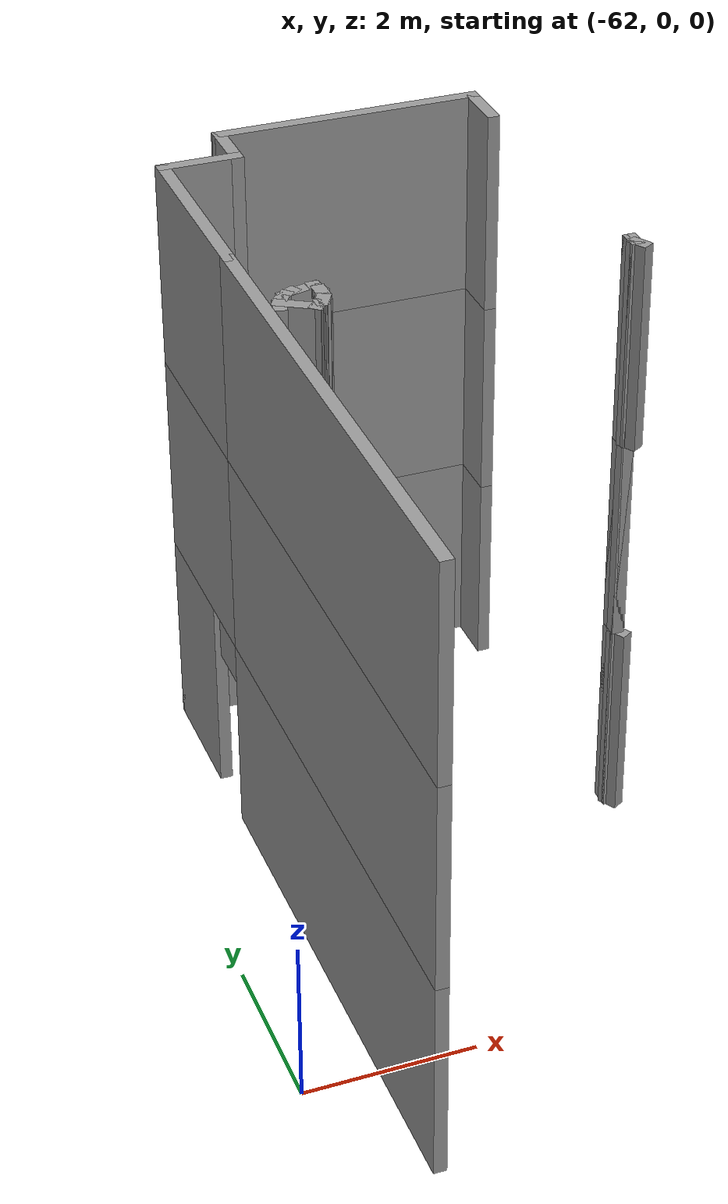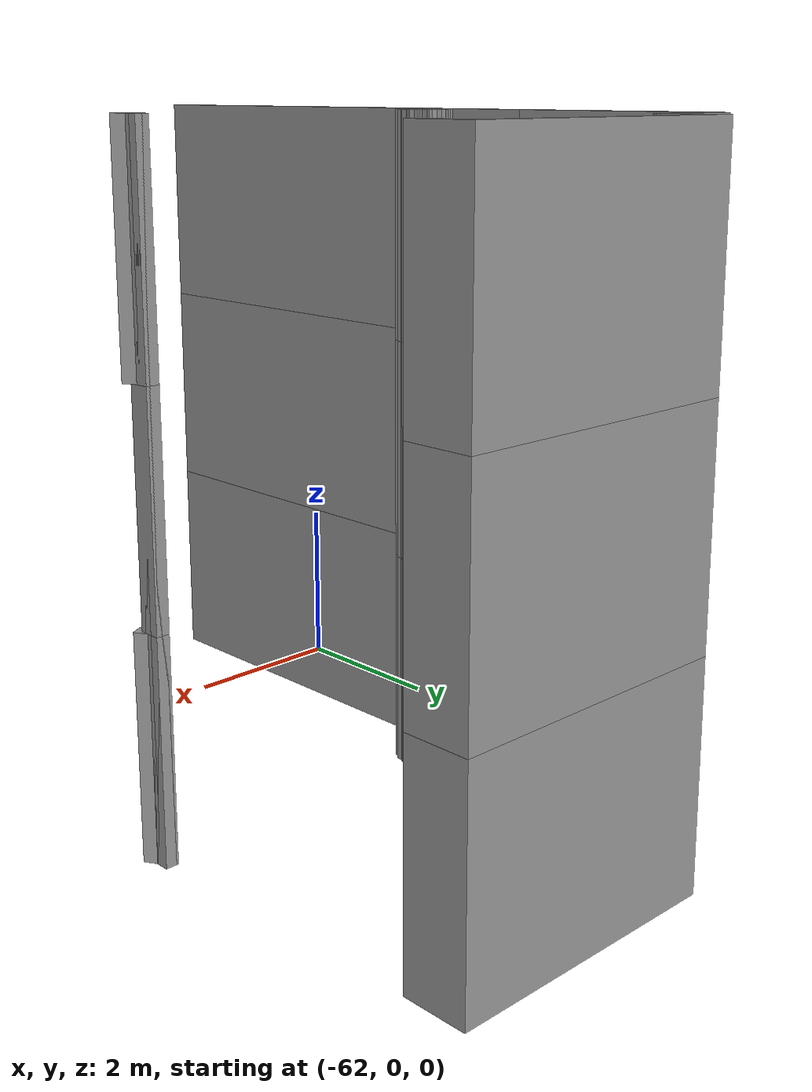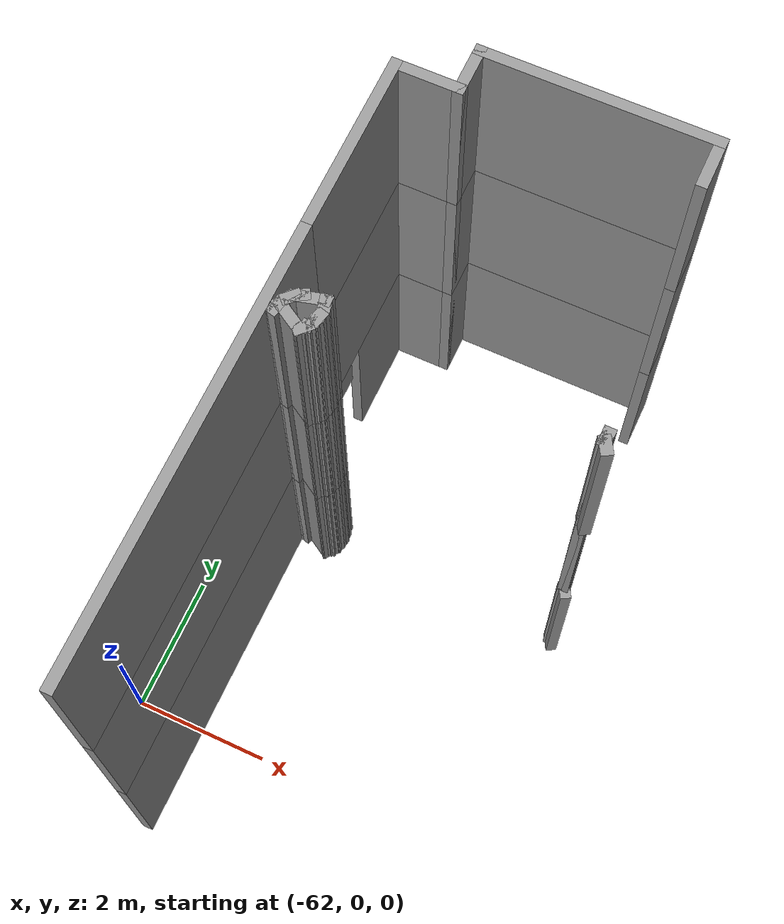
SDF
<sdf version="1.7">
 <model name="mapagazebo">
  <pose>-4.67869 9.01252 0 0 -0 0</pose>
  <link name="Wall_105">
   <collision name="Wall_105_Collision">
    <geometry><box><size>6.25 0.15 2.5</size></box></geometry>
    <pose>0 0 1.25 0 -0 0</pose>
   </collision>
   <visual name="Wall_105_Visual">
    <pose>0 0 1.25 0 -0 0</pose>
    <geometry><box><size>6.25 0.15 2.5</size></box></geometry>
    <material>
     <script><uri>file://media/materials/scripts/gazebo.material</uri><name>Gazebo/Grey</name></script>
     <ambient>1 1 1 1</ambient>
    </material>
    <meta><layer>0</layer></meta>
   </visual>
   <pose>-56.3749 -7.4661 0 0 -0 1.5708</pose>
  </link>
  <link name="Wall_1054">
   <collision name="Wall_1054_Collision">
    <geometry><box><size>0.25 0.15 2.5</size></box></geometry>
    <pose>0 0 1.25 0 -0 0</pose>
   </collision>
   <visual name="Wall_1054_Visual">
    <pose>0 0 1.25 0 -0 0</pose>
    <geometry><box><size>0.25 0.15 2.5</size></box></geometry>
    <material>
     <script><uri>file://media/materials/scripts/gazebo.material</uri><name>Gazebo/Grey</name></script>
     <ambient>1 1 1 1</ambient>
    </material>
    <meta><layer>1</layer></meta>
   </visual>
   <pose>-56.2126 -5.59137 2.5 0 -0 1.309</pose>
  </link>
  <link name="Wall_1055">
   <collision name="Wall_1055_Collision">
    <geometry><box><size>0.25 0.15 2.5</size></box></geometry>
    <pose>0 0 1.25 0 -0 0</pose>
   </collision>
   <visual name="Wall_1055_Visual">
    <pose>0 0 1.25 0 -0 0</pose>
    <geometry><box><size>0.25 0.15 2.5</size></box></geometry>
    <material>
     <script><uri>file://media/materials/scripts/gazebo.material</uri><name>Gazebo/Grey</name></script>
     <ambient>1 1 1 1</ambient>
    </material>
    <meta><layer>1</layer></meta>
   </visual>
   <pose>-56.1747 -5.49977 2.5 0 -0 1.0472</pose>
  </link>
  <link name="Wall_1056">
   <collision name="Wall_1056_Collision">
    <geometry><box><size>0.25 0.15 2.5</size></box></geometry>
    <pose>0 0 1.25 0 -0 0</pose>
   </collision>
   <visual name="Wall_1056_Visual">
    <pose>0 0 1.25 0 -0 0</pose>
    <geometry><box><size>0.25 0.15 2.5</size></box></geometry>
    <material>
     <script><uri>file://media/materials/scripts/gazebo.material</uri><name>Gazebo/Grey</name></script>
     <ambient>1 1 1 1</ambient>
    </material>
    <meta><layer>1</layer></meta>
   </visual>
   <pose>-56.1143 -5.42112 2.5 0 -0 0.785398</pose>
  </link>
  <link name="Wall_1057">
   <collision name="Wall_1057_Collision">
    <geometry><box><size>0.25 0.15 2.5</size></box></geometry>
    <pose>0 0 1.25 0 -0 0</pose>
   </collision>
   <visual name="Wall_1057_Visual">
    <pose>0 0 1.25 0 -0 0</pose>
    <geometry><box><size>0.25 0.15 2.5</size></box></geometry>
    <material>
     <script><uri>file://media/materials/scripts/gazebo.material</uri><name>Gazebo/Grey</name></script>
     <ambient>1 1 1 1</ambient>
    </material>
    <meta><layer>1</layer></meta>
   </visual>
   <pose>-56.0356 -5.36076 2.5 0 -0 0.523599</pose>
  </link>
  <link name="Wall_1058">
   <collision name="Wall_1058_Collision">
    <geometry><box><size>0.5 0.15 2.5</size></box></geometry>
    <pose>0 0 1.25 0 -0 0</pose>
   </collision>
   <visual name="Wall_1058_Visual">
    <pose>0 0 1.25 0 -0 0</pose>
    <geometry><box><size>0.5 0.15 2.5</size></box></geometry>
    <material>
     <script><uri>file://media/materials/scripts/gazebo.material</uri><name>Gazebo/Grey</name></script>
     <ambient>1 1 1 1</ambient>
    </material>
    <meta><layer>1</layer></meta>
   </visual>
   <pose>-55.9099 -5.34047 2.5 0 -0 0.261799</pose>
  </link>
  <link name="Wall_1059">
   <collision name="Wall_1059_Collision">
    <geometry><box><size>0.15 0.15 2.5</size></box></geometry>
    <pose>0 0 1.25 0 -0 0</pose>
   </collision>
   <visual name="Wall_1059_Visual">
    <pose>0 0 1.25 0 -0 0</pose>
    <geometry><box><size>0.15 0.15 2.5</size></box></geometry>
    <material>
     <script><uri>file://media/materials/scripts/gazebo.material</uri><name>Gazebo/Grey</name></script>
     <ambient>1 1 1 1</ambient>
    </material>
    <meta><layer>1</layer></meta>
   </visual>
   <pose>-55.7409 -5.29518 2.5 0 -0 0</pose>
  </link>
  <link name="Wall_106">
   <pose>-56.3749 -3.24111 0 0 -0 1.5708</pose>
   <visual name="Wall_106_Visual_0">
    <pose>-1.21703 0 1.25 0 -0 0</pose>
    <geometry><box><size>0.065941 0.15 2.5</size></box></geometry>
    <material>
     <script><uri>file://media/materials/scripts/gazebo.material</uri><name>Gazebo/Grey</name></script>
     <ambient>1 1 1 1</ambient>
    </material>
    <meta><layer>0</layer></meta>
   </visual>
   <collision name="Wall_106_Collision_0">
    <geometry><box><size>0.065941 0.15 2.5</size></box></geometry>
    <pose>-1.21703 0 1.25 0 -0 0</pose>
   </collision>
   <visual name="Wall_106_Visual_1">
    <pose>0.48297 0 1.25 0 -0 0</pose>
    <geometry><box><size>1.53406 0.15 2.5</size></box></geometry>
    <material>
     <script><uri>file://media/materials/scripts/gazebo.material</uri><name>Gazebo/Grey</name></script>
     <ambient>1 1 1 1</ambient>
    </material>
    <meta><layer>0</layer></meta>
   </visual>
   <collision name="Wall_106_Collision_1">
    <geometry><box><size>1.53406 0.15 2.5</size></box></geometry>
    <pose>0.48297 0 1.25 0 -0 0</pose>
   </collision>
   <visual name="Wall_106_Visual_2">
    <pose>0.816446 0 1.25 0 -0 0</pose>
    <geometry><box><size>0.867109 0.15 2.5</size></box></geometry>
    <material>
     <script><uri>file://media/materials/scripts/gazebo.material</uri><name>Gazebo/Grey</name></script>
     <ambient>1 1 1 1</ambient>
    </material>
    <meta><layer>0</layer></meta>
   </visual>
   <collision name="Wall_106_Collision_2">
    <geometry><box><size>0.867109 0.15 2.5</size></box></geometry>
    <pose>0.816446 0 1.25 0 -0 0</pose>
   </collision>
   <visual name="Wall_106_Visual_3">
    <pose>-0.850584 0 2.25 0 -0 0</pose>
    <geometry><box><size>0.666951 0.15 0.5</size></box></geometry>
    <material>
     <script><uri>file://media/materials/scripts/gazebo.material</uri><name>Gazebo/Grey</name></script>
     <ambient>1 1 1 1</ambient>
    </material>
    <meta><layer>0</layer></meta>
   </visual>
   <collision name="Wall_106_Collision_3">
    <geometry><box><size>0.666951 0.15 0.5</size></box></geometry>
    <pose>-0.850584 0 2.25 0 -0 0</pose>
   </collision>
  </link>
  <link name="Wall_1060">
   <collision name="Wall_1060_Collision">
    <geometry><box><size>0.25 0.15 2.5</size></box></geometry>
    <pose>0 0 1.25 0 -0 0</pose>
   </collision>
   <visual name="Wall_1060_Visual">
    <pose>0 0 1.25 0 -0 0</pose>
    <geometry><box><size>0.25 0.15 2.5</size></box></geometry>
    <material>
     <script><uri>file://media/materials/scripts/gazebo.material</uri><name>Gazebo/Grey</name></script>
     <ambient>1 1 1 1</ambient>
    </material>
    <meta><layer>1</layer></meta>
   </visual>
   <pose>-55.7279 -5.34347 2.5 0 -0 -1.309</pose>
  </link>
  <link name="Wall_1061">
   <collision name="Wall_1061_Collision">
    <geometry><box><size>0.25 0.15 2.5</size></box></geometry>
    <pose>0 0 1.25 0 -0 0</pose>
   </collision>
   <visual name="Wall_1061_Visual">
    <pose>0 0 1.25 0 -0 0</pose>
    <geometry><box><size>0.25 0.15 2.5</size></box></geometry>
    <material>
     <script><uri>file://media/materials/scripts/gazebo.material</uri><name>Gazebo/Grey</name></script>
     <ambient>1 1 1 1</ambient>
    </material>
    <meta><layer>1</layer></meta>
   </visual>
   <pose>-55.715 -5.44177 2.5 0 -0 -1.5708</pose>
  </link>
  <link name="Wall_1062">
   <collision name="Wall_1062_Collision">
    <geometry><box><size>0.25 0.15 2.5</size></box></geometry>
    <pose>0 0 1.25 0 -0 0</pose>
   </collision>
   <visual name="Wall_1062_Visual">
    <pose>0 0 1.25 0 -0 0</pose>
    <geometry><box><size>0.25 0.15 2.5</size></box></geometry>
    <material>
     <script><uri>file://media/materials/scripts/gazebo.material</uri><name>Gazebo/Grey</name></script>
     <ambient>1 1 1 1</ambient>
    </material>
    <meta><layer>1</layer></meta>
   </visual>
   <pose>-55.7279 -5.54006 2.5 0 -0 -1.8326</pose>
  </link>
  <link name="Wall_1063">
   <collision name="Wall_1063_Collision">
    <geometry><box><size>0.15 0.15 2.5</size></box></geometry>
    <pose>0 0 1.25 0 -0 0</pose>
   </collision>
   <visual name="Wall_1063_Visual">
    <pose>0 0 1.25 0 -0 0</pose>
    <geometry><box><size>0.15 0.15 2.5</size></box></geometry>
    <material>
     <script><uri>file://media/materials/scripts/gazebo.material</uri><name>Gazebo/Grey</name></script>
     <ambient>1 1 1 1</ambient>
    </material>
    <meta><layer>1</layer></meta>
   </visual>
   <pose>-55.7409 -5.58836 2.5 0 -0 0</pose>
  </link>
  <link name="Wall_1064">
   <collision name="Wall_1064_Collision">
    <geometry><box><size>0.25 0.15 2.5</size></box></geometry>
    <pose>0 0 1.25 0 -0 0</pose>
   </collision>
   <visual name="Wall_1064_Visual">
    <pose>0 0 1.25 0 -0 0</pose>
    <geometry><box><size>0.25 0.15 2.5</size></box></geometry>
    <material>
     <script><uri>file://media/materials/scripts/gazebo.material</uri><name>Gazebo/Grey</name></script>
     <ambient>1 1 1 1</ambient>
    </material>
    <meta><layer>1</layer></meta>
   </visual>
   <pose>-55.7659 -5.63166 2.5 0 -0 -2.0944</pose>
  </link>
  <link name="Wall_1065">
   <collision name="Wall_1065_Collision">
    <geometry><box><size>0.15 0.15 2.5</size></box></geometry>
    <pose>0 0 1.25 0 -0 0</pose>
   </collision>
   <visual name="Wall_1065_Visual">
    <pose>0 0 1.25 0 -0 0</pose>
    <geometry><box><size>0.15 0.15 2.5</size></box></geometry>
    <material>
     <script><uri>file://media/materials/scripts/gazebo.material</uri><name>Gazebo/Grey</name></script>
     <ambient>1 1 1 1</ambient>
    </material>
    <meta><layer>1</layer></meta>
   </visual>
   <pose>-55.7909 -5.67496 2.5 0 -0 0</pose>
  </link>
  <link name="Wall_1066">
   <collision name="Wall_1066_Collision">
    <geometry><box><size>0.25 0.15 2.5</size></box></geometry>
    <pose>0 0 1.25 0 -0 0</pose>
   </collision>
   <visual name="Wall_1066_Visual">
    <pose>0 0 1.25 0 -0 0</pose>
    <geometry><box><size>0.25 0.15 2.5</size></box></geometry>
    <material>
     <script><uri>file://media/materials/scripts/gazebo.material</uri><name>Gazebo/Grey</name></script>
     <ambient>1 1 1 1</ambient>
    </material>
    <meta><layer>1</layer></meta>
   </visual>
   <pose>-55.8262 -5.71032 2.5 0 -0 -2.35619</pose>
  </link>
  <link name="Wall_1067">
   <collision name="Wall_1067_Collision">
    <geometry><box><size>0.544132 0.15 2.5</size></box></geometry>
    <pose>0 0 1.25 0 -0 0</pose>
   </collision>
   <visual name="Wall_1067_Visual">
    <pose>0 0 1.25 0 -0 0</pose>
    <geometry><box><size>0.544132 0.15 2.5</size></box></geometry>
    <material>
     <script><uri>file://media/materials/scripts/gazebo.material</uri><name>Gazebo/Grey</name></script>
     <ambient>1 1 1 1</ambient>
    </material>
    <meta><layer>1</layer></meta>
   </visual>
   <pose>-56.0306 -5.64437 2.5 0 -0 2.60171</pose>
  </link>
  <link name="Wall_1068">
   <collision name="Wall_1068_Collision">
    <geometry><box><size>0.25 0.15 2.5</size></box></geometry>
    <pose>0 0 1.25 0 -0 0</pose>
   </collision>
   <visual name="Wall_1068_Visual">
    <pose>0 0 1.25 0 -0 0</pose>
    <geometry><box><size>0.25 0.15 2.5</size></box></geometry>
    <material>
     <script><uri>file://media/materials/scripts/gazebo.material</uri><name>Gazebo/Grey</name></script>
     <ambient>1 1 1 1</ambient>
    </material>
    <meta><layer>1</layer></meta>
   </visual>
   <pose>-56.2126 -5.59137 2.5 0 -0 -1.8326</pose>
  </link>
  <link name="Wall_108">
   <collision name="Wall_108_Collision">
    <geometry><box><size>1 0.15 2.5</size></box></geometry>
    <pose>0 0 1.25 0 -0 0</pose>
   </collision>
   <visual name="Wall_108_Visual">
    <pose>0 0 1.25 0 -0 0</pose>
    <geometry><box><size>1 0.15 2.5</size></box></geometry>
    <material>
     <script><uri>file://media/materials/scripts/gazebo.material</uri><name>Gazebo/Grey</name></script>
     <ambient>1 1 1 1</ambient>
    </material>
    <meta><layer>0</layer></meta>
   </visual>
   <pose>-55.9499 -2.0661 0 0 -0 0</pose>
  </link>
  <link name="Wall_109">
   <collision name="Wall_109_Collision">
    <geometry><box><size>0.75 0.15 2.5</size></box></geometry>
    <pose>0 0 1.25 0 -0 0</pose>
   </collision>
   <visual name="Wall_109_Visual">
    <pose>0 0 1.25 0 -0 0</pose>
    <geometry><box><size>0.75 0.15 2.5</size></box></geometry>
    <material>
     <script><uri>file://media/materials/scripts/gazebo.material</uri><name>Gazebo/Grey</name></script>
     <ambient>1 1 1 1</ambient>
    </material>
    <meta><layer>0</layer></meta>
   </visual>
   <pose>-55.5249 -1.76611 0 0 -0 1.5708</pose>
  </link>
  <link name="Wall_110">
   <collision name="Wall_110_Collision">
    <geometry><box><size>3.25 0.15 2.5</size></box></geometry>
    <pose>0 0 1.25 0 -0 0</pose>
   </collision>
   <visual name="Wall_110_Visual">
    <pose>0 0 1.25 0 -0 0</pose>
    <geometry><box><size>3.25 0.15 2.5</size></box></geometry>
    <material>
     <script><uri>file://media/materials/scripts/gazebo.material</uri><name>Gazebo/Grey</name></script>
     <ambient>1 1 1 1</ambient>
    </material>
    <meta><layer>0</layer></meta>
   </visual>
   <pose>-53.9749 -1.4661 0 0 -0 0</pose>
  </link>
  <link name="Wall_111">
   <collision name="Wall_111_Collision">
    <geometry><box><size>0.75 0.15 2.5</size></box></geometry>
    <pose>0 0 1.25 0 -0 0</pose>
   </collision>
   <visual name="Wall_111_Visual">
    <pose>0 0 1.25 0 -0 0</pose>
    <geometry><box><size>0.75 0.15 2.5</size></box></geometry>
    <material>
     <script><uri>file://media/materials/scripts/gazebo.material</uri><name>Gazebo/Grey</name></script>
     <ambient>1 1 1 1</ambient>
    </material>
    <meta><layer>0</layer></meta>
   </visual>
   <pose>-52.4249 -1.76611 0 0 -0 -1.5708</pose>
  </link>
  <link name="Wall_1474">
   <collision name="Wall_1474_Collision">
    <geometry><box><size>6.25 0.15 2.5</size></box></geometry>
    <pose>0 0 1.25 0 -0 0</pose>
   </collision>
   <visual name="Wall_1474_Visual">
    <pose>0 0 1.25 0 -0 0</pose>
    <geometry><box><size>6.25 0.15 2.5</size></box></geometry>
    <material>
     <script><uri>file://media/materials/scripts/gazebo.material</uri><name>Gazebo/Grey</name></script>
     <ambient>1 1 1 1</ambient>
    </material>
    <meta><layer>2</layer></meta>
   </visual>
   <pose>-56.3749 -7.4661 5 0 -0 1.5708</pose>
  </link>
  <link name="Wall_1475">
   <collision name="Wall_1475_Collision">
    <geometry><box><size>2.5 0.15 2.5</size></box></geometry>
    <pose>0 0 1.25 0 -0 0</pose>
   </collision>
   <visual name="Wall_1475_Visual">
    <pose>0 0 1.25 0 -0 0</pose>
    <geometry><box><size>2.5 0.15 2.5</size></box></geometry>
    <material>
     <script><uri>file://media/materials/scripts/gazebo.material</uri><name>Gazebo/Grey</name></script>
     <ambient>1 1 1 1</ambient>
    </material>
    <meta><layer>2</layer></meta>
   </visual>
   <pose>-56.3749 -3.24111 5 0 -0 1.5708</pose>
  </link>
  <link name="Wall_1476">
   <collision name="Wall_1476_Collision">
    <geometry><box><size>1 0.15 2.5</size></box></geometry>
    <pose>0 0 1.25 0 -0 0</pose>
   </collision>
   <visual name="Wall_1476_Visual">
    <pose>0 0 1.25 0 -0 0</pose>
    <geometry><box><size>1 0.15 2.5</size></box></geometry>
    <material>
     <script><uri>file://media/materials/scripts/gazebo.material</uri><name>Gazebo/Grey</name></script>
     <ambient>1 1 1 1</ambient>
    </material>
    <meta><layer>2</layer></meta>
   </visual>
   <pose>-55.9499 -2.0661 5 0 -0 0</pose>
  </link>
  <link name="Wall_1477">
   <collision name="Wall_1477_Collision">
    <geometry><box><size>0.75 0.15 2.5</size></box></geometry>
    <pose>0 0 1.25 0 -0 0</pose>
   </collision>
   <visual name="Wall_1477_Visual">
    <pose>0 0 1.25 0 -0 0</pose>
    <geometry><box><size>0.75 0.15 2.5</size></box></geometry>
    <material>
     <script><uri>file://media/materials/scripts/gazebo.material</uri><name>Gazebo/Grey</name></script>
     <ambient>1 1 1 1</ambient>
    </material>
    <meta><layer>2</layer></meta>
   </visual>
   <pose>-55.5249 -1.76611 5 0 -0 1.5708</pose>
  </link>
  <link name="Wall_1478">
   <collision name="Wall_1478_Collision">
    <geometry><box><size>3.25 0.15 2.5</size></box></geometry>
    <pose>0 0 1.25 0 -0 0</pose>
   </collision>
   <visual name="Wall_1478_Visual">
    <pose>0 0 1.25 0 -0 0</pose>
    <geometry><box><size>3.25 0.15 2.5</size></box></geometry>
    <material>
     <script><uri>file://media/materials/scripts/gazebo.material</uri><name>Gazebo/Grey</name></script>
     <ambient>1 1 1 1</ambient>
    </material>
    <meta><layer>2</layer></meta>
   </visual>
   <pose>-53.9749 -1.4661 5 0 -0 0</pose>
  </link>
  <link name="Wall_1479">
   <collision name="Wall_1479_Collision">
    <geometry><box><size>0.75 0.15 2.5</size></box></geometry>
    <pose>0 0 1.25 0 -0 0</pose>
   </collision>
   <visual name="Wall_1479_Visual">
    <pose>0 0 1.25 0 -0 0</pose>
    <geometry><box><size>0.75 0.15 2.5</size></box></geometry>
    <material>
     <script><uri>file://media/materials/scripts/gazebo.material</uri><name>Gazebo/Grey</name></script>
     <ambient>1 1 1 1</ambient>
    </material>
    <meta><layer>2</layer></meta>
   </visual>
   <pose>-52.4249 -1.76611 5 0 -0 -1.5708</pose>
  </link>
  <link name="Wall_1517">
   <collision name="Wall_1517_Collision">
    <geometry><box><size>0.25 0.15 2.5</size></box></geometry>
    <pose>0 0 1.25 0 -0 0</pose>
   </collision>
   <visual name="Wall_1517_Visual">
    <pose>0 0 1.25 0 -0 0</pose>
    <geometry><box><size>0.25 0.15 2.5</size></box></geometry>
    <material>
     <script><uri>file://media/materials/scripts/gazebo.material</uri><name>Gazebo/Grey</name></script>
     <ambient>1 1 1 1</ambient>
    </material>
    <meta><layer>2</layer></meta>
   </visual>
   <pose>-52.2293 -5.53086 5 0 -0 1.5708</pose>
  </link>
  <link name="Wall_1518">
   <collision name="Wall_1518_Collision">
    <geometry><box><size>0.25 0.15 2.5</size></box></geometry>
    <pose>0 0 1.25 0 -0 0</pose>
   </collision>
   <visual name="Wall_1518_Visual">
    <pose>0 0 1.25 0 -0 0</pose>
    <geometry><box><size>0.25 0.15 2.5</size></box></geometry>
    <material>
     <script><uri>file://media/materials/scripts/gazebo.material</uri><name>Gazebo/Grey</name></script>
     <ambient>1 1 1 1</ambient>
    </material>
    <meta><layer>2</layer></meta>
   </visual>
   <pose>-52.2293 -5.53086 5 0 -0 -1.5708</pose>
  </link>
  <link name="Wall_1519">
   <collision name="Wall_1519_Collision">
    <geometry><box><size>0.25 0.15 2.5</size></box></geometry>
    <pose>0 0 1.25 0 -0 0</pose>
   </collision>
   <visual name="Wall_1519_Visual">
    <pose>0 0 1.25 0 -0 0</pose>
    <geometry><box><size>0.25 0.15 2.5</size></box></geometry>
    <material>
     <script><uri>file://media/materials/scripts/gazebo.material</uri><name>Gazebo/Grey</name></script>
     <ambient>1 1 1 1</ambient>
    </material>
    <meta><layer>2</layer></meta>
   </visual>
   <pose>-52.2293 -5.53086 5 0 -0 1.5708</pose>
  </link>
  <link name="Wall_1520">
   <collision name="Wall_1520_Collision">
    <geometry><box><size>0.25 0.15 2.5</size></box></geometry>
    <pose>0 0 1.25 0 -0 0</pose>
   </collision>
   <visual name="Wall_1520_Visual">
    <pose>0 0 1.25 0 -0 0</pose>
    <geometry><box><size>0.25 0.15 2.5</size></box></geometry>
    <material>
     <script><uri>file://media/materials/scripts/gazebo.material</uri><name>Gazebo/Grey</name></script>
     <ambient>1 1 1 1</ambient>
    </material>
    <meta><layer>2</layer></meta>
   </visual>
   <pose>-52.2293 -5.53086 5 0 -0 -1.5708</pose>
  </link>
  <link name="Wall_1521">
   <collision name="Wall_1521_Collision">
    <geometry><box><size>0.25 0.15 2.5</size></box></geometry>
    <pose>0 0 1.25 0 -0 0</pose>
   </collision>
   <visual name="Wall_1521_Visual">
    <pose>0 0 1.25 0 -0 0</pose>
    <geometry><box><size>0.25 0.15 2.5</size></box></geometry>
    <material>
     <script><uri>file://media/materials/scripts/gazebo.material</uri><name>Gazebo/Grey</name></script>
     <ambient>1 1 1 1</ambient>
    </material>
    <meta><layer>2</layer></meta>
   </visual>
   <pose>-52.2043 -5.62416 5 0 -0 -1.0472</pose>
  </link>
  <link name="Wall_1538">
   <collision name="Wall_1538_Collision">
    <geometry><box><size>0.15 0.15 2.5</size></box></geometry>
    <pose>0 0 1.25 0 -0 0</pose>
   </collision>
   <visual name="Wall_1538_Visual">
    <pose>0 0 1.25 0 -0 0</pose>
    <geometry><box><size>0.15 0.15 2.5</size></box></geometry>
    <material>
     <script><uri>file://media/materials/scripts/gazebo.material</uri><name>Gazebo/Grey</name></script>
     <ambient>1 1 1 1</ambient>
    </material>
    <meta><layer>2</layer></meta>
   </visual>
   <pose>-52.2293 -5.58086 5 0 -0 0</pose>
  </link>
  <link name="Wall_160">
   <collision name="Wall_160_Collision">
    <geometry><box><size>0.25 0.15 2.5</size></box></geometry>
    <pose>0 0 1.25 0 -0 0</pose>
   </collision>
   <visual name="Wall_160_Visual">
    <pose>0 0 1.25 0 -0 0</pose>
    <geometry><box><size>0.25 0.15 2.5</size></box></geometry>
    <material>
     <script><uri>file://media/materials/scripts/gazebo.material</uri><name>Gazebo/Grey</name></script>
     <ambient>1 1 1 1</ambient>
    </material>
    <meta><layer>0</layer></meta>
   </visual>
   <pose>-52.2293 -5.53086 0 0 -0 1.5708</pose>
  </link>
  <link name="Wall_161">
   <collision name="Wall_161_Collision">
    <geometry><box><size>0.25 0.15 2.5</size></box></geometry>
    <pose>0 0 1.25 0 -0 0</pose>
   </collision>
   <visual name="Wall_161_Visual">
    <pose>0 0 1.25 0 -0 0</pose>
    <geometry><box><size>0.25 0.15 2.5</size></box></geometry>
    <material>
     <script><uri>file://media/materials/scripts/gazebo.material</uri><name>Gazebo/Grey</name></script>
     <ambient>1 1 1 1</ambient>
    </material>
    <meta><layer>0</layer></meta>
   </visual>
   <pose>-52.2293 -5.53086 0 0 -0 -1.5708</pose>
  </link>
  <link name="Wall_162">
   <collision name="Wall_162_Collision">
    <geometry><box><size>0.25 0.15 2.5</size></box></geometry>
    <pose>0 0 1.25 0 -0 0</pose>
   </collision>
   <visual name="Wall_162_Visual">
    <pose>0 0 1.25 0 -0 0</pose>
    <geometry><box><size>0.25 0.15 2.5</size></box></geometry>
    <material>
     <script><uri>file://media/materials/scripts/gazebo.material</uri><name>Gazebo/Grey</name></script>
     <ambient>1 1 1 1</ambient>
    </material>
    <meta><layer>0</layer></meta>
   </visual>
   <pose>-52.2293 -5.53086 0 0 -0 1.5708</pose>
  </link>
  <link name="Wall_163">
   <collision name="Wall_163_Collision">
    <geometry><box><size>0.25 0.15 2.5</size></box></geometry>
    <pose>0 0 1.25 0 -0 0</pose>
   </collision>
   <visual name="Wall_163_Visual">
    <pose>0 0 1.25 0 -0 0</pose>
    <geometry><box><size>0.25 0.15 2.5</size></box></geometry>
    <material>
     <script><uri>file://media/materials/scripts/gazebo.material</uri><name>Gazebo/Grey</name></script>
     <ambient>1 1 1 1</ambient>
    </material>
    <meta><layer>0</layer></meta>
   </visual>
   <pose>-52.2293 -5.53086 0 0 -0 -1.5708</pose>
  </link>
  <link name="Wall_164">
   <collision name="Wall_164_Collision">
    <geometry><box><size>0.25 0.15 2.5</size></box></geometry>
    <pose>0 0 1.25 0 -0 0</pose>
   </collision>
   <visual name="Wall_164_Visual">
    <pose>0 0 1.25 0 -0 0</pose>
    <geometry><box><size>0.25 0.15 2.5</size></box></geometry>
    <material>
     <script><uri>file://media/materials/scripts/gazebo.material</uri><name>Gazebo/Grey</name></script>
     <ambient>1 1 1 1</ambient>
    </material>
    <meta><layer>0</layer></meta>
   </visual>
   <pose>-52.2043 -5.62416 0 0 -0 -1.0472</pose>
  </link>
  <link name="Wall_1678">
   <collision name="Wall_1678_Collision">
    <geometry><box><size>0.25 0.15 2.5</size></box></geometry>
    <pose>0 0 1.25 0 -0 0</pose>
   </collision>
   <visual name="Wall_1678_Visual">
    <pose>0 0 1.25 0 -0 0</pose>
    <geometry><box><size>0.25 0.15 2.5</size></box></geometry>
    <material>
     <script><uri>file://media/materials/scripts/gazebo.material</uri><name>Gazebo/Grey</name></script>
     <ambient>1 1 1 1</ambient>
    </material>
    <meta><layer>2</layer></meta>
   </visual>
   <pose>-56.2126 -5.59137 5 0 -0 1.309</pose>
  </link>
  <link name="Wall_1679">
   <collision name="Wall_1679_Collision">
    <geometry><box><size>0.25 0.15 2.5</size></box></geometry>
    <pose>0 0 1.25 0 -0 0</pose>
   </collision>
   <visual name="Wall_1679_Visual">
    <pose>0 0 1.25 0 -0 0</pose>
    <geometry><box><size>0.25 0.15 2.5</size></box></geometry>
    <material>
     <script><uri>file://media/materials/scripts/gazebo.material</uri><name>Gazebo/Grey</name></script>
     <ambient>1 1 1 1</ambient>
    </material>
    <meta><layer>2</layer></meta>
   </visual>
   <pose>-56.1747 -5.49977 5 0 -0 1.0472</pose>
  </link>
  <link name="Wall_1680">
   <collision name="Wall_1680_Collision">
    <geometry><box><size>0.25 0.15 2.5</size></box></geometry>
    <pose>0 0 1.25 0 -0 0</pose>
   </collision>
   <visual name="Wall_1680_Visual">
    <pose>0 0 1.25 0 -0 0</pose>
    <geometry><box><size>0.25 0.15 2.5</size></box></geometry>
    <material>
     <script><uri>file://media/materials/scripts/gazebo.material</uri><name>Gazebo/Grey</name></script>
     <ambient>1 1 1 1</ambient>
    </material>
    <meta><layer>2</layer></meta>
   </visual>
   <pose>-56.1143 -5.42112 5 0 -0 0.785398</pose>
  </link>
  <link name="Wall_1681">
   <collision name="Wall_1681_Collision">
    <geometry><box><size>0.25 0.15 2.5</size></box></geometry>
    <pose>0 0 1.25 0 -0 0</pose>
   </collision>
   <visual name="Wall_1681_Visual">
    <pose>0 0 1.25 0 -0 0</pose>
    <geometry><box><size>0.25 0.15 2.5</size></box></geometry>
    <material>
     <script><uri>file://media/materials/scripts/gazebo.material</uri><name>Gazebo/Grey</name></script>
     <ambient>1 1 1 1</ambient>
    </material>
    <meta><layer>2</layer></meta>
   </visual>
   <pose>-56.0356 -5.36076 5 0 -0 0.523599</pose>
  </link>
  <link name="Wall_1682">
   <collision name="Wall_1682_Collision">
    <geometry><box><size>0.5 0.15 2.5</size></box></geometry>
    <pose>0 0 1.25 0 -0 0</pose>
   </collision>
   <visual name="Wall_1682_Visual">
    <pose>0 0 1.25 0 -0 0</pose>
    <geometry><box><size>0.5 0.15 2.5</size></box></geometry>
    <material>
     <script><uri>file://media/materials/scripts/gazebo.material</uri><name>Gazebo/Grey</name></script>
     <ambient>1 1 1 1</ambient>
    </material>
    <meta><layer>2</layer></meta>
   </visual>
   <pose>-55.9099 -5.34047 5 0 -0 0.261799</pose>
  </link>
  <link name="Wall_1683">
   <collision name="Wall_1683_Collision">
    <geometry><box><size>0.15 0.15 2.5</size></box></geometry>
    <pose>0 0 1.25 0 -0 0</pose>
   </collision>
   <visual name="Wall_1683_Visual">
    <pose>0 0 1.25 0 -0 0</pose>
    <geometry><box><size>0.15 0.15 2.5</size></box></geometry>
    <material>
     <script><uri>file://media/materials/scripts/gazebo.material</uri><name>Gazebo/Grey</name></script>
     <ambient>1 1 1 1</ambient>
    </material>
    <meta><layer>2</layer></meta>
   </visual>
   <pose>-55.7409 -5.29518 5 0 -0 0</pose>
  </link>
  <link name="Wall_1684">
   <collision name="Wall_1684_Collision">
    <geometry><box><size>0.25 0.15 2.5</size></box></geometry>
    <pose>0 0 1.25 0 -0 0</pose>
   </collision>
   <visual name="Wall_1684_Visual">
    <pose>0 0 1.25 0 -0 0</pose>
    <geometry><box><size>0.25 0.15 2.5</size></box></geometry>
    <material>
     <script><uri>file://media/materials/scripts/gazebo.material</uri><name>Gazebo/Grey</name></script>
     <ambient>1 1 1 1</ambient>
    </material>
    <meta><layer>2</layer></meta>
   </visual>
   <pose>-55.7279 -5.34347 5 0 -0 -1.309</pose>
  </link>
  <link name="Wall_1685">
   <collision name="Wall_1685_Collision">
    <geometry><box><size>0.25 0.15 2.5</size></box></geometry>
    <pose>0 0 1.25 0 -0 0</pose>
   </collision>
   <visual name="Wall_1685_Visual">
    <pose>0 0 1.25 0 -0 0</pose>
    <geometry><box><size>0.25 0.15 2.5</size></box></geometry>
    <material>
     <script><uri>file://media/materials/scripts/gazebo.material</uri><name>Gazebo/Grey</name></script>
     <ambient>1 1 1 1</ambient>
    </material>
    <meta><layer>2</layer></meta>
   </visual>
   <pose>-55.715 -5.44177 5 0 -0 -1.5708</pose>
  </link>
  <link name="Wall_1686">
   <collision name="Wall_1686_Collision">
    <geometry><box><size>0.25 0.15 2.5</size></box></geometry>
    <pose>0 0 1.25 0 -0 0</pose>
   </collision>
   <visual name="Wall_1686_Visual">
    <pose>0 0 1.25 0 -0 0</pose>
    <geometry><box><size>0.25 0.15 2.5</size></box></geometry>
    <material>
     <script><uri>file://media/materials/scripts/gazebo.material</uri><name>Gazebo/Grey</name></script>
     <ambient>1 1 1 1</ambient>
    </material>
    <meta><layer>2</layer></meta>
   </visual>
   <pose>-55.7279 -5.54006 5 0 -0 -1.8326</pose>
  </link>
  <link name="Wall_1687">
   <collision name="Wall_1687_Collision">
    <geometry><box><size>0.15 0.15 2.5</size></box></geometry>
    <pose>0 0 1.25 0 -0 0</pose>
   </collision>
   <visual name="Wall_1687_Visual">
    <pose>0 0 1.25 0 -0 0</pose>
    <geometry><box><size>0.15 0.15 2.5</size></box></geometry>
    <material>
     <script><uri>file://media/materials/scripts/gazebo.material</uri><name>Gazebo/Grey</name></script>
     <ambient>1 1 1 1</ambient>
    </material>
    <meta><layer>2</layer></meta>
   </visual>
   <pose>-55.7409 -5.58836 5 0 -0 0</pose>
  </link>
  <link name="Wall_1688">
   <collision name="Wall_1688_Collision">
    <geometry><box><size>0.25 0.15 2.5</size></box></geometry>
    <pose>0 0 1.25 0 -0 0</pose>
   </collision>
   <visual name="Wall_1688_Visual">
    <pose>0 0 1.25 0 -0 0</pose>
    <geometry><box><size>0.25 0.15 2.5</size></box></geometry>
    <material>
     <script><uri>file://media/materials/scripts/gazebo.material</uri><name>Gazebo/Grey</name></script>
     <ambient>1 1 1 1</ambient>
    </material>
    <meta><layer>2</layer></meta>
   </visual>
   <pose>-55.7659 -5.63166 5 0 -0 -2.0944</pose>
  </link>
  <link name="Wall_1689">
   <collision name="Wall_1689_Collision">
    <geometry><box><size>0.15 0.15 2.5</size></box></geometry>
    <pose>0 0 1.25 0 -0 0</pose>
   </collision>
   <visual name="Wall_1689_Visual">
    <pose>0 0 1.25 0 -0 0</pose>
    <geometry><box><size>0.15 0.15 2.5</size></box></geometry>
    <material>
     <script><uri>file://media/materials/scripts/gazebo.material</uri><name>Gazebo/Grey</name></script>
     <ambient>1 1 1 1</ambient>
    </material>
    <meta><layer>2</layer></meta>
   </visual>
   <pose>-55.7909 -5.67496 5 0 -0 0</pose>
  </link>
  <link name="Wall_1690">
   <collision name="Wall_1690_Collision">
    <geometry><box><size>0.25 0.15 2.5</size></box></geometry>
    <pose>0 0 1.25 0 -0 0</pose>
   </collision>
   <visual name="Wall_1690_Visual">
    <pose>0 0 1.25 0 -0 0</pose>
    <geometry><box><size>0.25 0.15 2.5</size></box></geometry>
    <material>
     <script><uri>file://media/materials/scripts/gazebo.material</uri><name>Gazebo/Grey</name></script>
     <ambient>1 1 1 1</ambient>
    </material>
    <meta><layer>2</layer></meta>
   </visual>
   <pose>-55.8262 -5.71032 5 0 -0 -2.35619</pose>
  </link>
  <link name="Wall_1691">
   <collision name="Wall_1691_Collision">
    <geometry><box><size>0.544132 0.15 2.5</size></box></geometry>
    <pose>0 0 1.25 0 -0 0</pose>
   </collision>
   <visual name="Wall_1691_Visual">
    <pose>0 0 1.25 0 -0 0</pose>
    <geometry><box><size>0.544132 0.15 2.5</size></box></geometry>
    <material>
     <script><uri>file://media/materials/scripts/gazebo.material</uri><name>Gazebo/Grey</name></script>
     <ambient>1 1 1 1</ambient>
    </material>
    <meta><layer>2</layer></meta>
   </visual>
   <pose>-56.0306 -5.64437 5 0 -0 2.60171</pose>
  </link>
  <link name="Wall_1692">
   <collision name="Wall_1692_Collision">
    <geometry><box><size>0.25 0.15 2.5</size></box></geometry>
    <pose>0 0 1.25 0 -0 0</pose>
   </collision>
   <visual name="Wall_1692_Visual">
    <pose>0 0 1.25 0 -0 0</pose>
    <geometry><box><size>0.25 0.15 2.5</size></box></geometry>
    <material>
     <script><uri>file://media/materials/scripts/gazebo.material</uri><name>Gazebo/Grey</name></script>
     <ambient>1 1 1 1</ambient>
    </material>
    <meta><layer>2</layer></meta>
   </visual>
   <pose>-56.2126 -5.59137 5 0 -0 -1.8326</pose>
  </link>
  <link name="Wall_181">
   <collision name="Wall_181_Collision">
    <geometry><box><size>0.15 0.15 2.5</size></box></geometry>
    <pose>0 0 1.25 0 -0 0</pose>
   </collision>
   <visual name="Wall_181_Visual">
    <pose>0 0 1.25 0 -0 0</pose>
    <geometry><box><size>0.15 0.15 2.5</size></box></geometry>
    <material>
     <script><uri>file://media/materials/scripts/gazebo.material</uri><name>Gazebo/Grey</name></script>
     <ambient>1 1 1 1</ambient>
    </material>
    <meta><layer>0</layer></meta>
   </visual>
   <pose>-52.2293 -5.58086 0 0 -0 0</pose>
  </link>
  <link name="Wall_346">
   <collision name="Wall_346_Collision">
    <geometry><box><size>0.25 0.15 2.5</size></box></geometry>
    <pose>0 0 1.25 0 -0 0</pose>
   </collision>
   <visual name="Wall_346_Visual">
    <pose>0 0 1.25 0 -0 0</pose>
    <geometry><box><size>0.25 0.15 2.5</size></box></geometry>
    <material>
     <script><uri>file://media/materials/scripts/gazebo.material</uri><name>Gazebo/Grey</name></script>
     <ambient>1 1 1 1</ambient>
    </material>
    <meta><layer>0</layer></meta>
   </visual>
   <pose>-56.2126 -5.59137 0 0 -0 1.309</pose>
  </link>
  <link name="Wall_347">
   <collision name="Wall_347_Collision">
    <geometry><box><size>0.25 0.15 2.5</size></box></geometry>
    <pose>0 0 1.25 0 -0 0</pose>
   </collision>
   <visual name="Wall_347_Visual">
    <pose>0 0 1.25 0 -0 0</pose>
    <geometry><box><size>0.25 0.15 2.5</size></box></geometry>
    <material>
     <script><uri>file://media/materials/scripts/gazebo.material</uri><name>Gazebo/Grey</name></script>
     <ambient>1 1 1 1</ambient>
    </material>
    <meta><layer>0</layer></meta>
   </visual>
   <pose>-56.1747 -5.49977 0 0 -0 1.0472</pose>
  </link>
  <link name="Wall_348">
   <collision name="Wall_348_Collision">
    <geometry><box><size>0.25 0.15 2.5</size></box></geometry>
    <pose>0 0 1.25 0 -0 0</pose>
   </collision>
   <visual name="Wall_348_Visual">
    <pose>0 0 1.25 0 -0 0</pose>
    <geometry><box><size>0.25 0.15 2.5</size></box></geometry>
    <material>
     <script><uri>file://media/materials/scripts/gazebo.material</uri><name>Gazebo/Grey</name></script>
     <ambient>1 1 1 1</ambient>
    </material>
    <meta><layer>0</layer></meta>
   </visual>
   <pose>-56.1143 -5.42112 0 0 -0 0.785398</pose>
  </link>
  <link name="Wall_349">
   <collision name="Wall_349_Collision">
    <geometry><box><size>0.25 0.15 2.5</size></box></geometry>
    <pose>0 0 1.25 0 -0 0</pose>
   </collision>
   <visual name="Wall_349_Visual">
    <pose>0 0 1.25 0 -0 0</pose>
    <geometry><box><size>0.25 0.15 2.5</size></box></geometry>
    <material>
     <script><uri>file://media/materials/scripts/gazebo.material</uri><name>Gazebo/Grey</name></script>
     <ambient>1 1 1 1</ambient>
    </material>
    <meta><layer>0</layer></meta>
   </visual>
   <pose>-56.0356 -5.36076 0 0 -0 0.523599</pose>
  </link>
  <link name="Wall_352">
   <collision name="Wall_352_Collision">
    <geometry><box><size>0.5 0.15 2.5</size></box></geometry>
    <pose>0 0 1.25 0 -0 0</pose>
   </collision>
   <visual name="Wall_352_Visual">
    <pose>0 0 1.25 0 -0 0</pose>
    <geometry><box><size>0.5 0.15 2.5</size></box></geometry>
    <material>
     <script><uri>file://media/materials/scripts/gazebo.material</uri><name>Gazebo/Grey</name></script>
     <ambient>1 1 1 1</ambient>
    </material>
    <meta><layer>0</layer></meta>
   </visual>
   <pose>-55.9099 -5.34047 0 0 -0 0.261799</pose>
  </link>
  <link name="Wall_353">
   <collision name="Wall_353_Collision">
    <geometry><box><size>0.15 0.15 2.5</size></box></geometry>
    <pose>0 0 1.25 0 -0 0</pose>
   </collision>
   <visual name="Wall_353_Visual">
    <pose>0 0 1.25 0 -0 0</pose>
    <geometry><box><size>0.15 0.15 2.5</size></box></geometry>
    <material>
     <script><uri>file://media/materials/scripts/gazebo.material</uri><name>Gazebo/Grey</name></script>
     <ambient>1 1 1 1</ambient>
    </material>
    <meta><layer>0</layer></meta>
   </visual>
   <pose>-55.7409 -5.29518 0 0 -0 0</pose>
  </link>
  <link name="Wall_354">
   <collision name="Wall_354_Collision">
    <geometry><box><size>0.25 0.15 2.5</size></box></geometry>
    <pose>0 0 1.25 0 -0 0</pose>
   </collision>
   <visual name="Wall_354_Visual">
    <pose>0 0 1.25 0 -0 0</pose>
    <geometry><box><size>0.25 0.15 2.5</size></box></geometry>
    <material>
     <script><uri>file://media/materials/scripts/gazebo.material</uri><name>Gazebo/Grey</name></script>
     <ambient>1 1 1 1</ambient>
    </material>
    <meta><layer>0</layer></meta>
   </visual>
   <pose>-55.7279 -5.34347 0 0 -0 -1.309</pose>
  </link>
  <link name="Wall_355">
   <collision name="Wall_355_Collision">
    <geometry><box><size>0.25 0.15 2.5</size></box></geometry>
    <pose>0 0 1.25 0 -0 0</pose>
   </collision>
   <visual name="Wall_355_Visual">
    <pose>0 0 1.25 0 -0 0</pose>
    <geometry><box><size>0.25 0.15 2.5</size></box></geometry>
    <material>
     <script><uri>file://media/materials/scripts/gazebo.material</uri><name>Gazebo/Grey</name></script>
     <ambient>1 1 1 1</ambient>
    </material>
    <meta><layer>0</layer></meta>
   </visual>
   <pose>-55.715 -5.44177 0 0 -0 -1.5708</pose>
  </link>
  <link name="Wall_356">
   <collision name="Wall_356_Collision">
    <geometry><box><size>0.25 0.15 2.5</size></box></geometry>
    <pose>0 0 1.25 0 -0 0</pose>
   </collision>
   <visual name="Wall_356_Visual">
    <pose>0 0 1.25 0 -0 0</pose>
    <geometry><box><size>0.25 0.15 2.5</size></box></geometry>
    <material>
     <script><uri>file://media/materials/scripts/gazebo.material</uri><name>Gazebo/Grey</name></script>
     <ambient>1 1 1 1</ambient>
    </material>
    <meta><layer>0</layer></meta>
   </visual>
   <pose>-55.7279 -5.54006 0 0 -0 -1.8326</pose>
  </link>
  <link name="Wall_357">
   <collision name="Wall_357_Collision">
    <geometry><box><size>0.15 0.15 2.5</size></box></geometry>
    <pose>0 0 1.25 0 -0 0</pose>
   </collision>
   <visual name="Wall_357_Visual">
    <pose>0 0 1.25 0 -0 0</pose>
    <geometry><box><size>0.15 0.15 2.5</size></box></geometry>
    <material>
     <script><uri>file://media/materials/scripts/gazebo.material</uri><name>Gazebo/Grey</name></script>
     <ambient>1 1 1 1</ambient>
    </material>
    <meta><layer>0</layer></meta>
   </visual>
   <pose>-55.7409 -5.58836 0 0 -0 0</pose>
  </link>
  <link name="Wall_358">
   <collision name="Wall_358_Collision">
    <geometry><box><size>0.25 0.15 2.5</size></box></geometry>
    <pose>0 0 1.25 0 -0 0</pose>
   </collision>
   <visual name="Wall_358_Visual">
    <pose>0 0 1.25 0 -0 0</pose>
    <geometry><box><size>0.25 0.15 2.5</size></box></geometry>
    <material>
     <script><uri>file://media/materials/scripts/gazebo.material</uri><name>Gazebo/Grey</name></script>
     <ambient>1 1 1 1</ambient>
    </material>
    <meta><layer>0</layer></meta>
   </visual>
   <pose>-55.7659 -5.63166 0 0 -0 -2.0944</pose>
  </link>
  <link name="Wall_359">
   <collision name="Wall_359_Collision">
    <geometry><box><size>0.15 0.15 2.5</size></box></geometry>
    <pose>0 0 1.25 0 -0 0</pose>
   </collision>
   <visual name="Wall_359_Visual">
    <pose>0 0 1.25 0 -0 0</pose>
    <geometry><box><size>0.15 0.15 2.5</size></box></geometry>
    <material>
     <script><uri>file://media/materials/scripts/gazebo.material</uri><name>Gazebo/Grey</name></script>
     <ambient>1 1 1 1</ambient>
    </material>
    <meta><layer>0</layer></meta>
   </visual>
   <pose>-55.7909 -5.67496 0 0 -0 0</pose>
  </link>
  <link name="Wall_360">
   <collision name="Wall_360_Collision">
    <geometry><box><size>0.25 0.15 2.5</size></box></geometry>
    <pose>0 0 1.25 0 -0 0</pose>
   </collision>
   <visual name="Wall_360_Visual">
    <pose>0 0 1.25 0 -0 0</pose>
    <geometry><box><size>0.25 0.15 2.5</size></box></geometry>
    <material>
     <script><uri>file://media/materials/scripts/gazebo.material</uri><name>Gazebo/Grey</name></script>
     <ambient>1 1 1 1</ambient>
    </material>
    <meta><layer>0</layer></meta>
   </visual>
   <pose>-55.8262 -5.71032 0 0 -0 -2.35619</pose>
  </link>
  <link name="Wall_361">
   <collision name="Wall_361_Collision">
    <geometry><box><size>0.544132 0.15 2.5</size></box></geometry>
    <pose>0 0 1.25 0 -0 0</pose>
   </collision>
   <visual name="Wall_361_Visual">
    <pose>0 0 1.25 0 -0 0</pose>
    <geometry><box><size>0.544132 0.15 2.5</size></box></geometry>
    <material>
     <script><uri>file://media/materials/scripts/gazebo.material</uri><name>Gazebo/Grey</name></script>
     <ambient>1 1 1 1</ambient>
    </material>
    <meta><layer>0</layer></meta>
   </visual>
   <pose>-56.0306 -5.64437 0 0 -0 2.60171</pose>
  </link>
  <link name="Wall_362">
   <collision name="Wall_362_Collision">
    <geometry><box><size>0.25 0.15 2.5</size></box></geometry>
    <pose>0 0 1.25 0 -0 0</pose>
   </collision>
   <visual name="Wall_362_Visual">
    <pose>0 0 1.25 0 -0 0</pose>
    <geometry><box><size>0.25 0.15 2.5</size></box></geometry>
    <material>
     <script><uri>file://media/materials/scripts/gazebo.material</uri><name>Gazebo/Grey</name></script>
     <ambient>1 1 1 1</ambient>
    </material>
    <meta><layer>0</layer></meta>
   </visual>
   <pose>-56.2126 -5.59137 0 0 -0 -1.8326</pose>
  </link>
  <link name="Wall_850">
   <collision name="Wall_850_Collision">
    <geometry><box><size>6.25 0.15 2.5</size></box></geometry>
    <pose>0 0 1.25 0 -0 0</pose>
   </collision>
   <visual name="Wall_850_Visual">
    <pose>0 0 1.25 0 -0 0</pose>
    <geometry><box><size>6.25 0.15 2.5</size></box></geometry>
    <material>
     <script><uri>file://media/materials/scripts/gazebo.material</uri><name>Gazebo/Grey</name></script>
     <ambient>1 1 1 1</ambient>
    </material>
    <meta><layer>1</layer></meta>
   </visual>
   <pose>-56.3749 -7.4661 2.5 0 -0 1.5708</pose>
  </link>
  <link name="Wall_851">
   <collision name="Wall_851_Collision">
    <geometry><box><size>2.5 0.15 2.5</size></box></geometry>
    <pose>0 0 1.25 0 -0 0</pose>
   </collision>
   <visual name="Wall_851_Visual">
    <pose>0 0 1.25 0 -0 0</pose>
    <geometry><box><size>2.5 0.15 2.5</size></box></geometry>
    <material>
     <script><uri>file://media/materials/scripts/gazebo.material</uri><name>Gazebo/Grey</name></script>
     <ambient>1 1 1 1</ambient>
    </material>
    <meta><layer>1</layer></meta>
   </visual>
   <pose>-56.3749 -3.24111 2.5 0 -0 1.5708</pose>
  </link>
  <link name="Wall_852">
   <collision name="Wall_852_Collision">
    <geometry><box><size>1 0.15 2.5</size></box></geometry>
    <pose>0 0 1.25 0 -0 0</pose>
   </collision>
   <visual name="Wall_852_Visual">
    <pose>0 0 1.25 0 -0 0</pose>
    <geometry><box><size>1 0.15 2.5</size></box></geometry>
    <material>
     <script><uri>file://media/materials/scripts/gazebo.material</uri><name>Gazebo/Grey</name></script>
     <ambient>1 1 1 1</ambient>
    </material>
    <meta><layer>1</layer></meta>
   </visual>
   <pose>-55.9499 -2.0661 2.5 0 -0 0</pose>
  </link>
  <link name="Wall_853">
   <collision name="Wall_853_Collision">
    <geometry><box><size>0.75 0.15 2.5</size></box></geometry>
    <pose>0 0 1.25 0 -0 0</pose>
   </collision>
   <visual name="Wall_853_Visual">
    <pose>0 0 1.25 0 -0 0</pose>
    <geometry><box><size>0.75 0.15 2.5</size></box></geometry>
    <material>
     <script><uri>file://media/materials/scripts/gazebo.material</uri><name>Gazebo/Grey</name></script>
     <ambient>1 1 1 1</ambient>
    </material>
    <meta><layer>1</layer></meta>
   </visual>
   <pose>-55.5249 -1.76611 2.5 0 -0 1.5708</pose>
  </link>
  <link name="Wall_854">
   <collision name="Wall_854_Collision">
    <geometry><box><size>3.25 0.15 2.5</size></box></geometry>
    <pose>0 0 1.25 0 -0 0</pose>
   </collision>
   <visual name="Wall_854_Visual">
    <pose>0 0 1.25 0 -0 0</pose>
    <geometry><box><size>3.25 0.15 2.5</size></box></geometry>
    <material>
     <script><uri>file://media/materials/scripts/gazebo.material</uri><name>Gazebo/Grey</name></script>
     <ambient>1 1 1 1</ambient>
    </material>
    <meta><layer>1</layer></meta>
   </visual>
   <pose>-53.9749 -1.4661 2.5 0 -0 0</pose>
  </link>
  <link name="Wall_855">
   <collision name="Wall_855_Collision">
    <geometry><box><size>0.75 0.15 2.5</size></box></geometry>
    <pose>0 0 1.25 0 -0 0</pose>
   </collision>
   <visual name="Wall_855_Visual">
    <pose>0 0 1.25 0 -0 0</pose>
    <geometry><box><size>0.75 0.15 2.5</size></box></geometry>
    <material>
     <script><uri>file://media/materials/scripts/gazebo.material</uri><name>Gazebo/Grey</name></script>
     <ambient>1 1 1 1</ambient>
    </material>
    <meta><layer>1</layer></meta>
   </visual>
   <pose>-52.4249 -1.76611 2.5 0 -0 -1.5708</pose>
  </link>
  <link name="Wall_893">
   <collision name="Wall_893_Collision">
    <geometry><box><size>0.25 0.15 2.5</size></box></geometry>
    <pose>0 0 1.25 0 -0 0</pose>
   </collision>
   <visual name="Wall_893_Visual">
    <pose>0 0 1.25 0 -0 0</pose>
    <geometry><box><size>0.25 0.15 2.5</size></box></geometry>
    <material>
     <script><uri>file://media/materials/scripts/gazebo.material</uri><name>Gazebo/Grey</name></script>
     <ambient>1 1 1 1</ambient>
    </material>
    <meta><layer>1</layer></meta>
   </visual>
   <pose>-52.2293 -5.53086 2.5 0 -0 1.5708</pose>
  </link>
  <link name="Wall_894">
   <collision name="Wall_894_Collision">
    <geometry><box><size>0.25 0.15 2.5</size></box></geometry>
    <pose>0 0 1.25 0 -0 0</pose>
   </collision>
   <visual name="Wall_894_Visual">
    <pose>0 0 1.25 0 -0 0</pose>
    <geometry><box><size>0.25 0.15 2.5</size></box></geometry>
    <material>
     <script><uri>file://media/materials/scripts/gazebo.material</uri><name>Gazebo/Grey</name></script>
     <ambient>1 1 1 1</ambient>
    </material>
    <meta><layer>1</layer></meta>
   </visual>
   <pose>-52.2293 -5.53086 2.5 0 -0 -1.5708</pose>
  </link>
  <link name="Wall_895">
   <collision name="Wall_895_Collision">
    <geometry><box><size>0.25 0.15 2.5</size></box></geometry>
    <pose>0 0 1.25 0 -0 0</pose>
   </collision>
   <visual name="Wall_895_Visual">
    <pose>0 0 1.25 0 -0 0</pose>
    <geometry><box><size>0.25 0.15 2.5</size></box></geometry>
    <material>
     <script><uri>file://media/materials/scripts/gazebo.material</uri><name>Gazebo/Grey</name></script>
     <ambient>1 1 1 1</ambient>
    </material>
    <meta><layer>1</layer></meta>
   </visual>
   <pose>-52.2293 -5.53086 2.5 0 -0 1.5708</pose>
  </link>
  <link name="Wall_896">
   <collision name="Wall_896_Collision">
    <geometry><box><size>0.25 0.15 2.5</size></box></geometry>
    <pose>0 0 1.25 0 -0 0</pose>
   </collision>
   <visual name="Wall_896_Visual">
    <pose>0 0 1.25 0 -0 0</pose>
    <geometry><box><size>0.25 0.15 2.5</size></box></geometry>
    <material>
     <script><uri>file://media/materials/scripts/gazebo.material</uri><name>Gazebo/Grey</name></script>
     <ambient>1 1 1 1</ambient>
    </material>
    <meta><layer>1</layer></meta>
   </visual>
   <pose>-52.2293 -5.53086 2.5 0 -0 -1.5708</pose>
  </link>
  <link name="Wall_914">
   <collision name="Wall_914_Collision">
    <geometry><box><size>0.15 0.15 2.5</size></box></geometry>
    <pose>0 0 1.25 0 -0 0</pose>
   </collision>
   <visual name="Wall_914_Visual">
    <pose>0 0 1.25 0 -0 0</pose>
    <geometry><box><size>0.15 0.15 2.5</size></box></geometry>
    <material>
     <script><uri>file://media/materials/scripts/gazebo.material</uri><name>Gazebo/Grey</name></script>
     <ambient>1 1 1 1</ambient>
    </material>
    <meta><layer>1</layer></meta>
   </visual>
   <pose>-52.2293 -5.58086 2.5 0 -0 0</pose>
  </link>
  <static>1</static>
 </model>
</sdf>
